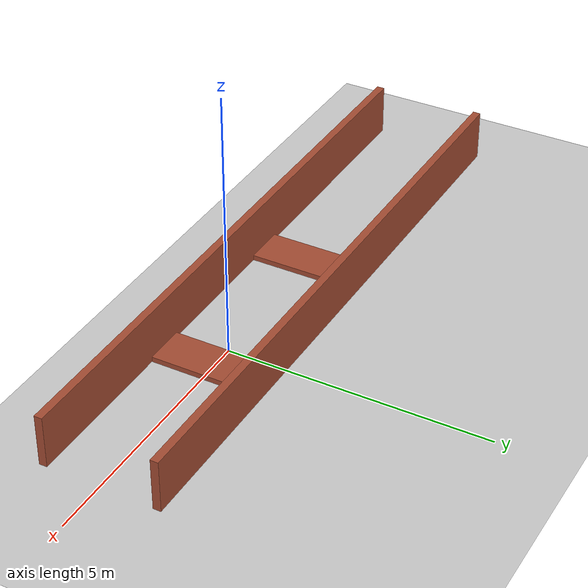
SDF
<sdf version='1.4'>
  <world name='default'>
    <light name='sun' type='directional'>
      <cast_shadows>1</cast_shadows>
      <pose frame=''>0 0 10 0 -0 0</pose>
      <diffuse>0.8 0.8 0.8 1</diffuse>
      <specular>0.1 0.1 0.1 1</specular>
      <attenuation>
        <range>1000</range>
        <constant>0.9</constant>
        <linear>0.01</linear>
        <quadratic>0.001</quadratic>
      </attenuation>
      <direction>-0.5 0.5 -1</direction>
    </light>
    <model name='ground_plane'>
      <static>1</static>
      <link name='link'>
        <collision name='collision'>
          <geometry>
            <plane>
              <normal>0 0 1</normal>
              <size>100 100</size>
            </plane>
          </geometry>
          <surface>
            <friction>
              <ode>
                <mu>100000</mu>
                <mu2>500000</mu2>
              </ode>
              <torsional>
                <ode/>
              </torsional>
            </friction>
            <contact>
              <ode/>
            </contact>
            <bounce/>
          </surface>
          <max_contacts>10</max_contacts>
        </collision>
        <visual name='visual'>
          <cast_shadows>0</cast_shadows>
          <geometry>
            <plane>
              <normal>0 0 1</normal>
              <size>100 100</size>
            </plane>
          </geometry>
          <material>
            <script>
              <uri>file://media/materials/scripts/gazebo.material</uri>
              <name>Gazebo/Grey</name>
            </script>
          </material>
        </visual>
        <self_collide>0</self_collide>
        <kinematic>0</kinematic>
        <gravity>1</gravity>
      </link>
    </model>
    <physics name='default_physics' default='0' type='ode'>
      <max_step_size>0.0015</max_step_size>
      <real_time_factor>1</real_time_factor>
      <real_time_update_rate>0</real_time_update_rate>
      <gravity>0 0 -9.8</gravity>
    </physics>
    <scene>
      <ambient>0.4 0.4 0.4 1</ambient>
      <background>0.7 0.7 0.7 1</background>
      <shadows>1</shadows>
    </scene>
    <spherical_coordinates>
      <surface_model>EARTH_WGS84</surface_model>
      <latitude_deg>0</latitude_deg>
      <longitude_deg>0</longitude_deg>
      <elevation>0</elevation>
      <heading_deg>0</heading_deg>
    </spherical_coordinates>
    <model name='path11'>
      <pose frame=''>0 0 0 0 0 0</pose>
      <link name='Wall_11'>
        <pose frame=''>-2 -1.075 0.5 0 -0 0</pose>
        <collision name='Wall_11_Collision'>
          <geometry>
            <box>
              <size>12 0.15 1.0</size>
            </box>
          </geometry>
          <max_contacts>10</max_contacts>
          <surface>
            <contact>
              <ode/>
            </contact>
            <bounce/>
            <friction>
              <torsional>
                <ode/>
              </torsional>
              <ode/>
            </friction>
          </surface>
        </collision>
        <visual name='Wall_11_Visual'>
          <geometry>
            <box>
              <size>12 0.15 1.0</size>
            </box>
          </geometry>
          <material>
            <script>
              <uri>file://media/materials/scripts/gazebo.material</uri>
              <name>Gazebo/Bricks</name>
            </script>
            <ambient>1 1 1 1</ambient>
          </material>
        </visual>
        <pose frame=''>0 0 0 0 -0 0</pose>
        <self_collide>0</self_collide>
        <kinematic>0</kinematic>
        <gravity>1</gravity>
      </link>
      <link name='Wall_9'>
        <pose frame=''>-2 1.075 0.5 0 -0 0</pose>
        <collision name='Wall_9_Collision'>
          <geometry>
            <box>
              <size>12 0.15 1.0</size>
            </box>
          </geometry>
          <max_contacts>10</max_contacts>
          <surface>
            <contact>
              <ode/>
            </contact>
            <bounce/>
            <friction>
              <torsional>
                <ode/>
              </torsional>
              <ode/>
            </friction>
          </surface>
        </collision>
        <visual name='Wall_9_Visual'>
          <geometry>
            <box>
              <size>12 0.15 1.0</size>
            </box>
          </geometry>
          <material>
            <script>
              <uri>file://media/materials/scripts/gazebo.material</uri>
              <name>Gazebo/Bricks</name>
            </script>
            <ambient>1 1 1 1</ambient>
          </material>
        </visual>
        <self_collide>0</self_collide>
        <kinematic>0</kinematic>
        <gravity>1</gravity>
      </link>
      <link name='obstacle1'>
        <pose frame=''>0.5 0 0.05 0 -0 0</pose>
        <collision name='obstacle1_Collision'>
          <geometry>
            <box>
              <size>0.8 2.0 0.1</size>
            </box>
          </geometry>
          <max_contacts>10</max_contacts>
          <surface>
            <contact>
              <ode/>
            </contact>
            <bounce/>
            <friction>
              <ode>
                <mu>100000</mu>
                <mu2>1000000</mu2>
              </ode>
            </friction>
          </surface>
        </collision>
        <visual name='obstacle1_Visual'>
          <geometry>
            <box>
              <size>0.8 2.0 0.1</size>
            </box>
          </geometry>
          <material>
            <script>
              <uri>file://media/materials/scripts/gazebo.material</uri>
              <name>Gazebo/Bricks</name>
            </script>
            <ambient>1 1 1 1</ambient>
          </material>
        </visual>
        <self_collide>0</self_collide>
        <kinematic>0</kinematic>
        <gravity>1</gravity>
      </link>
      <static>1</static>

      <link name='obstacle2'>
        <pose frame=''>-3.0 0 0.05 0 -0 0</pose>
        <collision name='obstacle2_Collision'>
          <geometry>
            <box>
              <size>0.8 2.0 0.1</size>
            </box>
          </geometry>
          <max_contacts>10</max_contacts>
          <surface>
            <contact>
              <ode/>
            </contact>
            <bounce/>
            <friction>
              <ode>
                <mu>100000</mu>
                <mu2>1000000</mu2>
              </ode>
            </friction>
          </surface>
        </collision>
        <visual name='obstacle2_Visual'>
          <geometry>
            <box>
              <size>0.8 2.0 0.1</size>
            </box>
          </geometry>
          <material>
            <script>
              <uri>file://media/materials/scripts/gazebo.material</uri>
              <name>Gazebo/Bricks</name>
            </script>
            <ambient>1 1 1 1</ambient>
          </material>
        </visual>
        <self_collide>0</self_collide>
        <kinematic>0</kinematic>
        <gravity>1</gravity>
      </link>
      <static>1</static>
    </model>
    <gui fullscreen='0'>
      <camera name='user_camera'>
        <pose frame=''>6.33833 5.88181 15.8728 4.7e-05 1.5698 2.0501</pose>
        <view_controller>orbit</view_controller>
        <projection_type>perspective</projection_type>
      </camera>
    </gui>

  </world>
</sdf>
